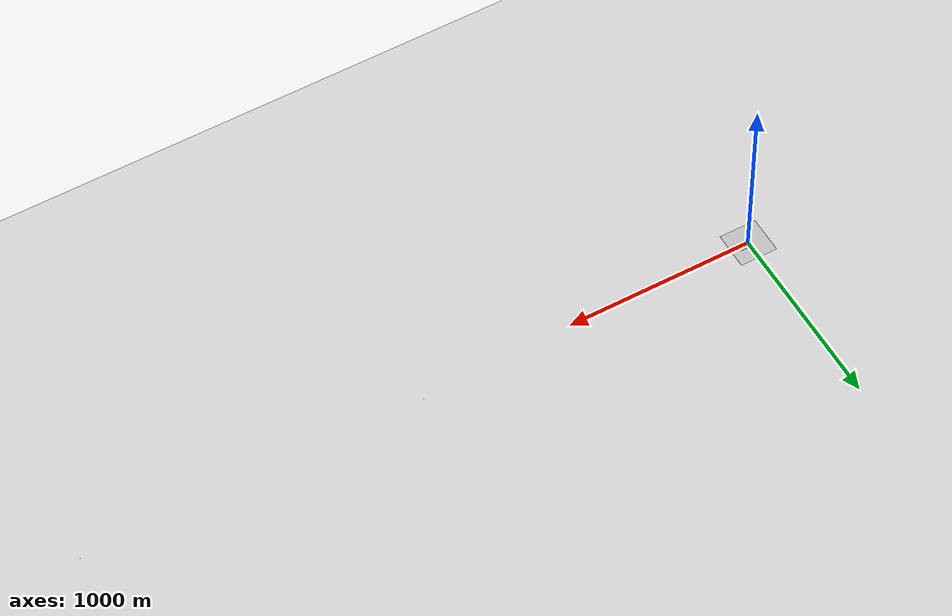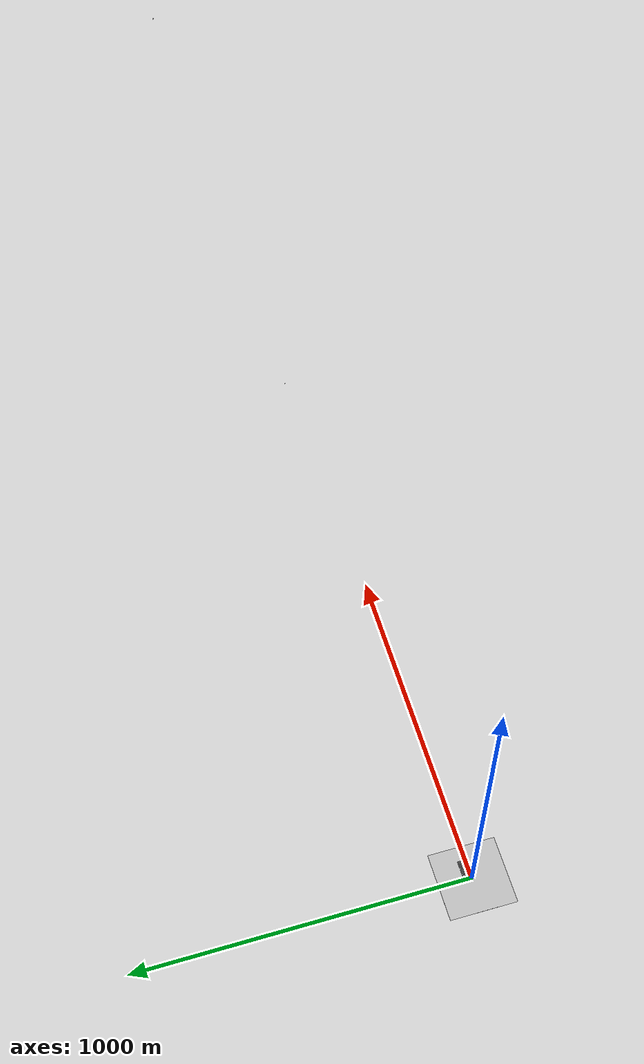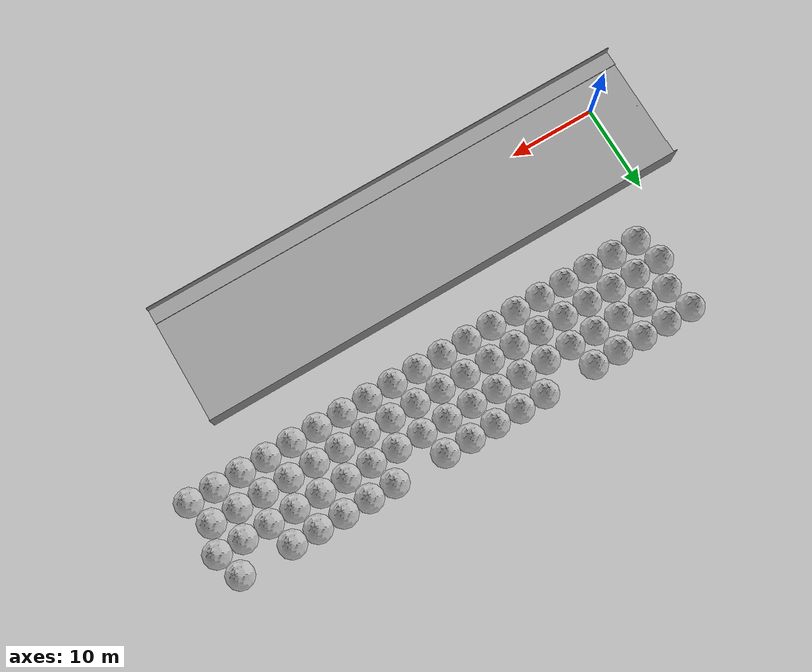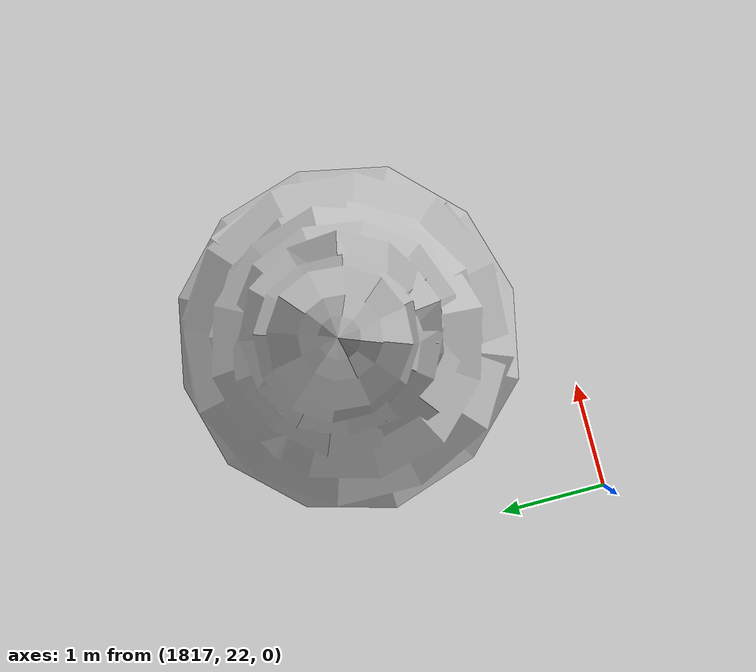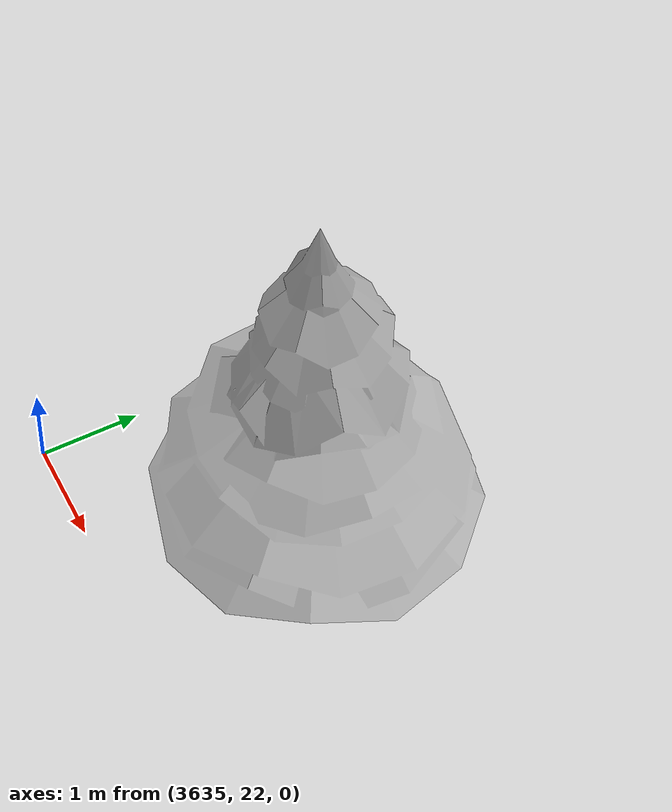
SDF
<sdf version="1.5">
 <world name="default">
  <include><uri>model://sun</uri></include>
  <include><uri>model://ground_plane</uri></include>
  <include><uri>model://concrete_plane</uri></include>
  <include><uri>model://deungsun_bridge</uri><pose>0 30 0 1.570796 0 0</pose></include>
  <include><uri>model://pine_tree</uri><name>forest</name><pose>4 15 0 0 0 0</pose></include>
  <include><uri>model://pine_tree</uri><name>forest</name><pose>7 15 0 0 0 0</pose></include>
  <include><uri>model://pine_tree</uri><name>forest</name><pose>10 15 0 0 0 0</pose></include>
  <include><uri>model://pine_tree</uri><name>forest</name><pose>13 15 0 0 0 0</pose></include>
  <include><uri>model://pine_tree</uri><name>forest</name><pose>16 15 0 0 0 0</pose></include>
  <include><uri>model://pine_tree</uri><name>forest</name><pose>19 15 0 0 0 0</pose></include>
  <include><uri>model://pine_tree</uri><name>forest</name><pose>22 15 0 0 0 0</pose></include>
  <include><uri>model://pine_tree</uri><name>forest</name><pose>25 15 0 0 0 0</pose></include>
  <include><uri>model://pine_tree</uri><name>forest</name><pose>28 15 0 0 0 0</pose></include>
  <include><uri>model://pine_tree</uri><name>forest</name><pose>31 15 0 0 0 0</pose></include>
  <include><uri>model://pine_tree</uri><name>forest</name><pose>34 15 0 0 0 0</pose></include>
  <include><uri>model://pine_tree</uri><name>forest</name><pose>37 15 0 0 0 0</pose></include>
  <include><uri>model://pine_tree</uri><name>forest</name><pose>40 15 0 0 0 0</pose></include>
  <include><uri>model://pine_tree</uri><name>forest</name><pose>43 15 0 0 0 0</pose></include>
  <include><uri>model://pine_tree</uri><name>forest</name><pose>46 15 0 0 0 0</pose></include>
  <include><uri>model://pine_tree</uri><name>forest</name><pose>49 15 0 0 0 0</pose></include>
  <include><uri>model://pine_tree</uri><name>forest</name><pose>52 15 0 0 0 0</pose></include>
  <include><uri>model://pine_tree</uri><name>forest</name><pose>55 15 0 0 0 0</pose></include>
  <include><uri>model://pine_tree</uri><name>forest</name><pose>58 15 0 0 0 0</pose></include>
  <include><uri>model://pine_tree</uri><name>forest</name><pose>3 18 0 0 0 0</pose></include>
  <include><uri>model://pine_tree</uri><name>forest</name><pose>6 18 0 0 0 0</pose></include>
  <include><uri>model://pine_tree</uri><name>forest</name><pose>9 18 0 0 0 0</pose></include>
  <include><uri>model://pine_tree</uri><name>forest</name><pose>12 18 0 0 0 0</pose></include>
  <include><uri>model://pine_tree</uri><name>forest</name><pose>15 18 0 0 0 0</pose></include>
  <include><uri>model://pine_tree</uri><name>forest</name><pose>18 18 0 0 0 0</pose></include>
  <include><uri>model://pine_tree</uri><name>forest</name><pose>21 18 0 0 0 0</pose></include>
  <include><uri>model://pine_tree</uri><name>forest</name><pose>24 18 0 0 0 0</pose></include>
  <include><uri>model://pine_tree</uri><name>forest</name><pose>27 18 0 0 0 0</pose></include>
  <include><uri>model://pine_tree</uri><name>forest</name><pose>30 18 0 0 0 0</pose></include>
  <include><uri>model://pine_tree</uri><name>forest</name><pose>33 18 0 0 0 0</pose></include>
  <include><uri>model://pine_tree</uri><name>forest</name><pose>36 18 0 0 0 0</pose></include>
  <include><uri>model://pine_tree</uri><name>forest</name><pose>39 18 0 0 0 0</pose></include>
  <include><uri>model://pine_tree</uri><name>forest</name><pose>42 18 0 0 0 0</pose></include>
  <include><uri>model://pine_tree</uri><name>forest</name><pose>45 18 0 0 0 0</pose></include>
  <include><uri>model://pine_tree</uri><name>forest</name><pose>48 18 0 0 0 0</pose></include>
  <include><uri>model://pine_tree</uri><name>forest</name><pose>51 18 0 0 0 0</pose></include>
  <include><uri>model://pine_tree</uri><name>forest</name><pose>54 18 0 0 0 0</pose></include>
  <include><uri>model://pine_tree</uri><name>forest</name><pose>57 18 0 0 0 0</pose></include>
  <include><uri>model://pine_tree</uri><name>forest</name><pose>4 21 0 0 0 0</pose></include>
  <include><uri>model://pine_tree</uri><name>forest</name><pose>7 21 0 0 0 0</pose></include>
  <include><uri>model://pine_tree</uri><name>forest</name><pose>10 21 0 0 0 0</pose></include>
  <include><uri>model://pine_tree</uri><name>forest</name><pose>13 21 0 0 0 0</pose></include>
  <include><uri>model://pine_tree</uri><name>forest</name><pose>16 21 0 0 0 0</pose></include>
  <include><uri>model://pine_tree</uri><name>forest</name><pose>19 21 0 0 0 0</pose></include>
  <include><uri>model://pine_tree</uri><name>forest</name><pose>22 21 0 0 0 0</pose></include>
  <include><uri>model://pine_tree</uri><name>forest</name><pose>25 21 0 0 0 0</pose></include>
  <include><uri>model://pine_tree</uri><name>forest</name><pose>28 21 0 0 0 0</pose></include>
  <include><uri>model://pine_tree</uri><name>forest</name><pose>31 21 0 0 0 0</pose></include>
  <include><uri>model://pine_tree</uri><name>forest</name><pose>34 21 0 0 0 0</pose></include>
  <include><uri>model://pine_tree</uri><name>forest</name><pose>37 21 0 0 0 0</pose></include>
  <include><uri>model://pine_tree</uri><name>forest</name><pose>40 21 0 0 0 0</pose></include>
  <include><uri>model://pine_tree</uri><name>forest</name><pose>43 21 0 0 0 0</pose></include>
  <include><uri>model://pine_tree</uri><name>forest</name><pose>46 21 0 0 0 0</pose></include>
  <include><uri>model://pine_tree</uri><name>forest</name><pose>49 21 0 0 0 0</pose></include>
  <include><uri>model://pine_tree</uri><name>forest</name><pose>52 21 0 0 0 0</pose></include>
  <include><uri>model://pine_tree</uri><name>forest</name><pose>55 21 0 0 0 0</pose></include>
  <include><uri>model://pine_tree</uri><name>forest</name><pose>58 21 0 0 0 0</pose></include>
  <include><uri>model://pine_tree</uri><name>forest</name><pose>3 24 0 0 0 0</pose></include>
  <include><uri>model://pine_tree</uri><name>forest</name><pose>6 24 0 0 0 0</pose></include>
  <include><uri>model://pine_tree</uri><name>forest</name><pose>9 24 0 0 0 0</pose></include>
  <include><uri>model://pine_tree</uri><name>forest</name><pose>12 24 0 0 0 0</pose></include>
  <include><uri>model://pine_tree</uri><name>forest</name><pose>15 24 0 0 0 0</pose></include>
  <include><uri>model://pine_tree</uri><name>forest</name><pose>1819 24 0 0 0 0</pose></include>
  <include><uri>model://pine_tree</uri><name>forest</name><pose>21 24 0 0 0 0</pose></include>
  <include><uri>model://pine_tree</uri><name>forest</name><pose>24 24 0 0 0 0</pose></include>
  <include><uri>model://pine_tree</uri><name>forest</name><pose>27 24 0 0 0 0</pose></include>
  <include><uri>model://pine_tree</uri><name>forest</name><pose>30 24 0 0 0 0</pose></include>
  <include><uri>model://pine_tree</uri><name>forest</name><pose>33 24 0 0 0 0</pose></include>
  <include><uri>model://pine_tree</uri><name>forest</name><pose>3637 24 0 0 0 0</pose></include>
  <include><uri>model://pine_tree</uri><name>forest</name><pose>39 24 0 0 0 0</pose></include>
  <include><uri>model://pine_tree</uri><name>forest</name><pose>42 24 0 0 0 0</pose></include>
  <include><uri>model://pine_tree</uri><name>forest</name><pose>45 24 0 0 0 0</pose></include>
  <include><uri>model://pine_tree</uri><name>forest</name><pose>48 24 0 0 0 0</pose></include>
  <include><uri>model://pine_tree</uri><name>forest</name><pose>51 24 0 0 0 0</pose></include>
  <include><uri>model://pine_tree</uri><name>forest</name><pose>57 24 0 0 0 0</pose></include>
  <physics name="default_physics" default="0" type="ode">
   <gravity>0 0 -9.8066</gravity>
   <ode>
    <solver>
     <type>quick</type>
     <iters>10</iters>
     <sor>1.3</sor>
     <use_dynamic_moi_rescaling>0</use_dynamic_moi_rescaling>
    </solver>
    <constraints>
     <cfm>0</cfm>
     <erp>0.2</erp>
     <contact_max_correcting_vel>100</contact_max_correcting_vel>
     <contact_surface_layer>0.001</contact_surface_layer>
    </constraints>
   </ode>
   <max_step_size>0.004</max_step_size>
   <real_time_factor>1</real_time_factor>
   <real_time_update_rate>250</real_time_update_rate>
   <magnetic_field>6.0e-6 2.3e-5 -4.2e-5</magnetic_field>
  </physics>
 </world>
</sdf>

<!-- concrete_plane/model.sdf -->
<sdf version="1.5">
  <model name="concrete_plane">
    <static>true</static>
    <link name="link">
      <collision name="collision">
        <geometry>
          <box>
            <size>200 200 .1</size>
          </box>
        </geometry>
      </collision>
      <visual name="visual">
        <cast_shadows>false</cast_shadows>
        <geometry>
          <box>
            <size>200 200 .1</size>
          </box>
        </geometry>
        <material>
          <script>
            <uri>model://concrete_plane/materials/scripts</uri>
            <uri>model://concrete_plane/materials/textures</uri>
            <name>vrc/concrete</name>
          </script>
        </material>
      </visual>
    </link>
  </model>
</sdf>

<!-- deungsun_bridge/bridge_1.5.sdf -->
<sdf version='1.5'>
	<model name='deungsun_bridge'>

		<static>true</static>

		<link name='link'>
				<visual name='visual'>
				<geometry>
					<mesh>
						<uri>model://deungsun_bridge/meshes/deungsun_bridge_simple.dae</uri>
					</mesh>
				</geometry>
				<material>
					<script>
						<uri>model://deungsun_bridge/materials/scripts</uri>
						<uri>model://deungsun_bridge/materials/textures</uri>
						<name>vrc/concrete</name>
					</script>
				</material>
			</visual>
			<collision name='collision'>
				<geometry>
					<mesh>
						<uri>model://deungsun_bridge/meshes/deungsun_bridge_simple.dae</uri>
					</mesh>
				</geometry>
				<material>
					<script>
						<uri>model://deungsun_bridge/materials/scripts</uri>
						<uri>model://deungsun_bridge/materials/textures</uri>
						<name>vrc/concrete</name>
					</script>
				</material>
			</collision>
		</link>

	</model>
</sdf>

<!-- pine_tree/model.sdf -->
<sdf version="1.6">
  <model name="pine_tree">
    <static>true</static>
    <link name="link">
      <collision name="collision">
        <geometry>
          <mesh>
            <uri>file://isr-testbed/pine_tree/meshes/pine_tree.dae</uri>
          </mesh>
        </geometry>
      </collision>
      <visual name="branch">
        <geometry>
          <mesh>
            <uri>file://isr-testbed/pine_tree/meshes/pine_tree.dae</uri>
            <submesh>
              <name>Branch</name>
            </submesh>
          </mesh>
        </geometry>
        <material>
          <script>
            <uri>file://isr-testbed/pine_tree/materials/scripts/</uri>
            <uri>file://isr-testbed/pine_tree/materials/textures/</uri>
            <name>PineTree/Branch</name>
          </script>
        </material>
      </visual>
      <visual name="bark">
        <geometry>
          <mesh>
            <uri>file://isr-testbed/pine_tree/meshes/pine_tree.dae</uri>
            <submesh>
              <name>Bark</name>
            </submesh>
          </mesh>
        </geometry>
        <material>
          <script>
            <uri>file://isr-testbed/pine_tree/materials/scripts/</uri>
            <uri>file://isr-testbed/pine_tree/materials/textures/</uri>
            <name>PineTree/Bark</name>
          </script>
        </material>
      </visual>
    </link>
  </model>
</sdf>
